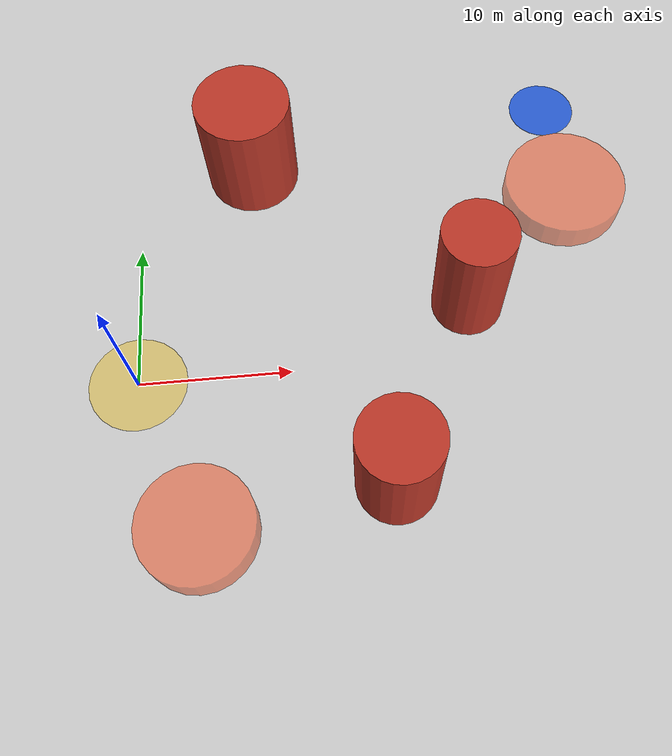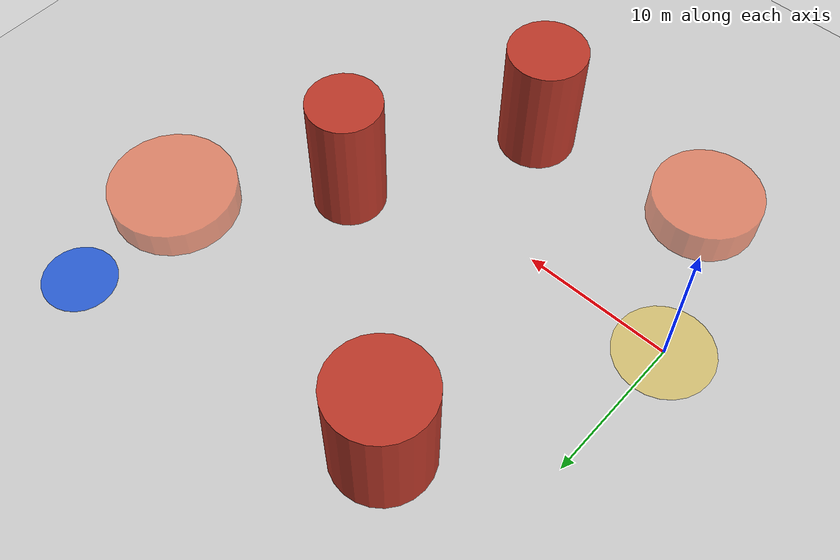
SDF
<?xml version="1.0" ?>
<sdf version="1.6">
  <world name="swarm_city_realworld">
    <include>
      <uri>model://sun</uri>
    </include>

    <include>
      <uri>model://ground_plane</uri>
    </include>

    <scene>
      <ambient>0.68 0.68 0.68 1</ambient>
      <background>0.82 0.90 0.96 1</background>
      <shadows>true</shadows>
    </scene>

    <physics type="ode">
      <max_step_size>0.004</max_step_size>
      <real_time_update_rate>250</real_time_update_rate>
      <real_time_factor>1</real_time_factor>
    </physics>

    <model name="source_marker">
      <static>true</static>
      <pose>0.000 0.000 0.030 0 0 0</pose>
      <link name="link">
        <visual name="disc">
          <geometry><cylinder><radius>2.1</radius><length>0.06</length></cylinder></geometry>
          <material>
            <ambient>0.10 0.70 0.20 0.85</ambient>
            <diffuse>0.10 0.70 0.20 0.85</diffuse>
          </material>
        </visual>
      </link>
    </model>

    <model name="destination_marker">
      <static>true</static>
      <pose>30.000 20.000 0.030 0 0 0</pose>
      <link name="link">
        <visual name="disc">
          <geometry><cylinder><radius>2.4</radius><length>0.06</length></cylinder></geometry>
          <material>
            <ambient>0.10 0.34 0.88 0.85</ambient>
            <diffuse>0.10 0.34 0.88 0.85</diffuse>
          </material>
        </visual>
      </link>
    </model>

    <model name="leader_start_ring">
      <static>true</static>
      <pose>0.000 0.000 0.080 0 0 0</pose>
      <link name="outer">
        <visual name="outer_visual">
          <geometry><cylinder><radius>3.2</radius><length>0.05</length></cylinder></geometry>
          <material>
            <ambient>0.92 0.74 0.08 0.45</ambient>
            <diffuse>0.92 0.74 0.08 0.45</diffuse>
          </material>
        </visual>
      </link>
    </model>

    <model name="zone_building_cluster_a">
      <static>true</static>
      <pose>8.000 16.000 4.000 0 0 0</pose>
      <link name="link">
        <collision name="collision">
          <geometry><cylinder><radius>3.200</radius><length>8.000</length></cylinder></geometry>
        </collision>
        <visual name="visual">
          <geometry><cylinder><radius>3.200</radius><length>8.000</length></cylinder></geometry>
          <material>
            <ambient>0.74 0.22 0.16 0.95</ambient>
            <diffuse>0.74 0.22 0.16 0.95</diffuse>
          </material>
        </visual>
      </link>
    </model>

    <model name="zone_tower_obstacle_b">
      <static>true</static>
      <pose>22.000 4.000 4.500 0 0 0</pose>
      <link name="link">
        <collision name="collision">
          <geometry><cylinder><radius>2.400</radius><length>9.000</length></cylinder></geometry>
        </collision>
        <visual name="visual">
          <geometry><cylinder><radius>2.400</radius><length>9.000</length></cylinder></geometry>
          <material>
            <ambient>0.74 0.22 0.16 0.95</ambient>
            <diffuse>0.74 0.22 0.16 0.95</diffuse>
          </material>
        </visual>
      </link>
    </model>

    <model name="zone_obstacle_south">
      <static>true</static>
      <pose>16.000 -8.000 4.200 0 0 0</pose>
      <link name="link">
        <collision name="collision">
          <geometry><cylinder><radius>2.600</radius><length>8.400</length></cylinder></geometry>
        </collision>
        <visual name="visual">
          <geometry><cylinder><radius>2.600</radius><length>8.400</length></cylinder></geometry>
          <material>
            <ambient>0.74 0.22 0.16 0.95</ambient>
            <diffuse>0.74 0.22 0.16 0.95</diffuse>
          </material>
        </visual>
      </link>
    </model>

    <model name="zone_threat_corridor_1">
      <static>true</static>
      <pose>30.000 12.000 1.000 0 0 0</pose>
      <link name="link">
        <collision name="collision">
          <geometry><cylinder><radius>4.200</radius><length>2.000</length></cylinder></geometry>
        </collision>
        <visual name="visual">
          <geometry><cylinder><radius>4.200</radius><length>2.000</length></cylinder></geometry>
          <material>
            <ambient>0.96 0.33 0.14 0.55</ambient>
            <diffuse>0.96 0.33 0.14 0.55</diffuse>
          </material>
        </visual>
      </link>
    </model>

    <model name="zone_threat_corridor_2">
      <static>true</static>
      <pose>4.000 -10.000 1.200 0 0 0</pose>
      <link name="link">
        <collision name="collision">
          <geometry><cylinder><radius>3.600</radius><length>2.400</length></cylinder></geometry>
        </collision>
        <visual name="visual">
          <geometry><cylinder><radius>3.600</radius><length>2.400</length></cylinder></geometry>
          <material>
            <ambient>0.96 0.33 0.14 0.55</ambient>
            <diffuse>0.96 0.33 0.14 0.55</diffuse>
          </material>
        </visual>
      </link>
    </model>
  </world>
</sdf>
